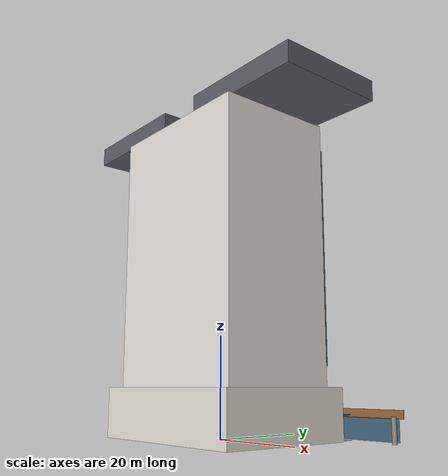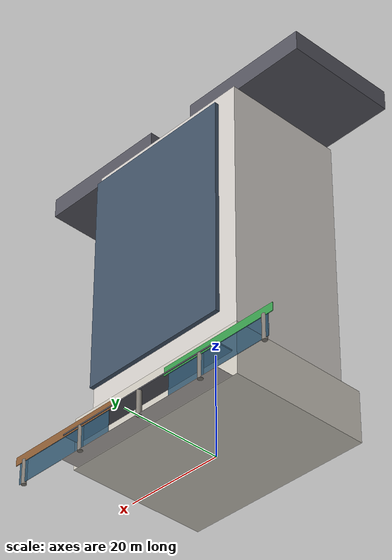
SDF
<?xml version="1.0" ?>
<sdf version="1.8">
  <model name="fengyi_landmark_residence">
    <static>true</static>
    <link name="fengyi_link">
      <collision name="podium_col"><pose>0 0 5.0 0 0 0</pose><geometry><box><size>38.0 28.0 10.0</size></box></geometry></collision>
      <collision name="tower_col"><pose>0 0 35.0 0 0 0</pose><geometry><box><size>34.0 24.0 54.0</size></box></geometry></collision>
      <visual name="podium_vis"><pose>0 0 5.0 0 0 0</pose><geometry><box><size>38.0 28.0 10.0</size></box></geometry><material><ambient>0.76 0.74 0.70 1</ambient><diffuse>0.82 0.80 0.76 1</diffuse></material></visual>
      <visual name="arcade_floor"><pose>0 15.5 0.08 0 0 0</pose><geometry><box><size>36.0 3.8 0.02</size></box></geometry><material><ambient>0.65 0.62 0.60 1</ambient><diffuse>0.72 0.70 0.68 1</diffuse></material></visual>
      <visual name="arcade_ceiling"><pose>0 15.5 4.8 0 0 0</pose><geometry><box><size>36.0 3.8 0.25</size></box></geometry><material><ambient>0.28 0.28 0.30 1</ambient><diffuse>0.32 0.32 0.35 1</diffuse></material></visual>
      <visual name="roman_col_-28"><pose>-28.0 17.0 2.4 0 0 0</pose><geometry><cylinder><radius>0.48</radius><length>4.8</length></cylinder></geometry><material><ambient>0.42 0.40 0.38 1</ambient><diffuse>0.50 0.48 0.45 1</diffuse></material></visual>
      <visual name="roman_col_-14"><pose>-14.0 17.0 2.4 0 0 0</pose><geometry><cylinder><radius>0.48</radius><length>4.8</length></cylinder></geometry><material><ambient>0.42 0.40 0.38 1</ambient><diffuse>0.50 0.48 0.45 1</diffuse></material></visual>
      <visual name="roman_col_0"><pose>0.0 17.0 2.4 0 0 0</pose><geometry><cylinder><radius>0.48</radius><length>4.8</length></cylinder></geometry><material><ambient>0.42 0.40 0.38 1</ambient><diffuse>0.50 0.48 0.45 1</diffuse></material></visual>
      <visual name="roman_col_14"><pose>14.0 17.0 2.4 0 0 0</pose><geometry><cylinder><radius>0.48</radius><length>4.8</length></cylinder></geometry><material><ambient>0.42 0.40 0.38 1</ambient><diffuse>0.50 0.48 0.45 1</diffuse></material></visual>
      <visual name="roman_col_28"><pose>28.0 17.0 2.4 0 0 0</pose><geometry><cylinder><radius>0.48</radius><length>4.8</length></cylinder></geometry><material><ambient>0.42 0.40 0.38 1</ambient><diffuse>0.50 0.48 0.45 1</diffuse></material></visual>
      <visual name="organic_fascia"><pose>-18.0 17.2 5.2 0 0 0</pose><geometry><box><size>24.0 0.15 1.6</size></box></geometry><material><ambient>0.15 0.45 0.22 1</ambient><diffuse>0.22 0.62 0.30 1</diffuse><emissive>0.08 0.25 0.12 1</emissive></material></visual>
      <visual name="organic_glass"><pose>-18.0 17.15 2.4 0 0 0</pose><geometry><box><size>22.0 0.1 4.2</size></box></geometry><material><ambient>0.15 0.25 0.35 0.88</ambient><diffuse>0.20 0.35 0.45 0.88</diffuse><specular>0.9 0.95 1.0 1</specular></material></visual>
      <visual name="cafe_fascia"><pose>18.0 17.2 5.2 0 0 0</pose><geometry><box><size>24.0 0.15 1.6</size></box></geometry><material><ambient>0.45 0.28 0.15 1</ambient><diffuse>0.55 0.36 0.20 1</diffuse><emissive>0.20 0.12 0.05 1</emissive></material></visual>
      <visual name="cafe_glass"><pose>18.0 17.15 2.4 0 0 0</pose><geometry><box><size>22.0 0.1 4.2</size></box></geometry><material><ambient>0.15 0.25 0.35 0.88</ambient><diffuse>0.20 0.35 0.45 0.88</diffuse><specular>0.9 0.95 1.0 1</specular></material></visual>
      <visual name="tower_main_vis"><pose>0 0 36.0 0 0 0</pose><geometry><box><size>34.0 24.0 52.0</size></box></geometry><material><ambient>0.78 0.76 0.74 1</ambient><diffuse>0.84 0.82 0.80 1</diffuse></material></visual>
      <visual name="balconies_front"><pose>0 14.2 36.0 0 0 0</pose><geometry><box><size>30.0 0.8 44.0</size></box></geometry><material><ambient>0.20 0.25 0.32 0.9</ambient><diffuse>0.25 0.32 0.40 0.9</diffuse><specular>0.9 0.95 1.0 1</specular></material></visual>
      <!-- 雙冠頂造型 (Twin Crowns) -->
      <visual name="crown_left"><pose>-18.0 0 64.0 0 0 0</pose><geometry><box><size>26.0 22.0 4.0</size></box></geometry><material><ambient>0.28 0.28 0.32 1</ambient><diffuse>0.34 0.34 0.38 1</diffuse></material></visual>
      <visual name="crown_right"><pose>18.0 0 64.0 0 0 0</pose><geometry><box><size>26.0 22.0 4.0</size></box></geometry><material><ambient>0.28 0.28 0.32 1</ambient><diffuse>0.34 0.34 0.38 1</diffuse></material></visual>
    </link>
  </model>
</sdf>
